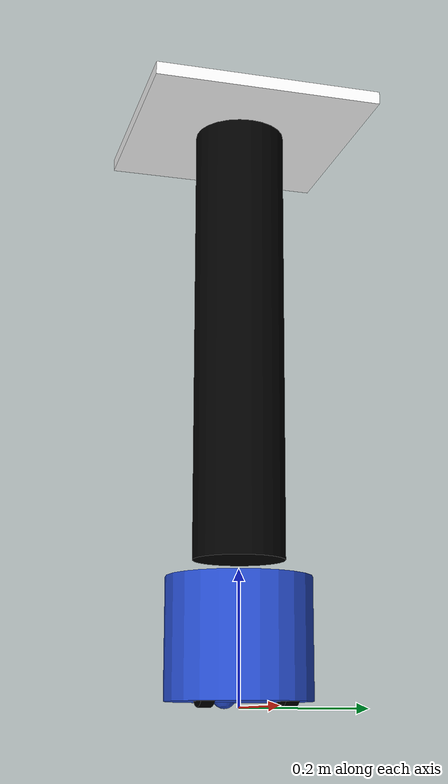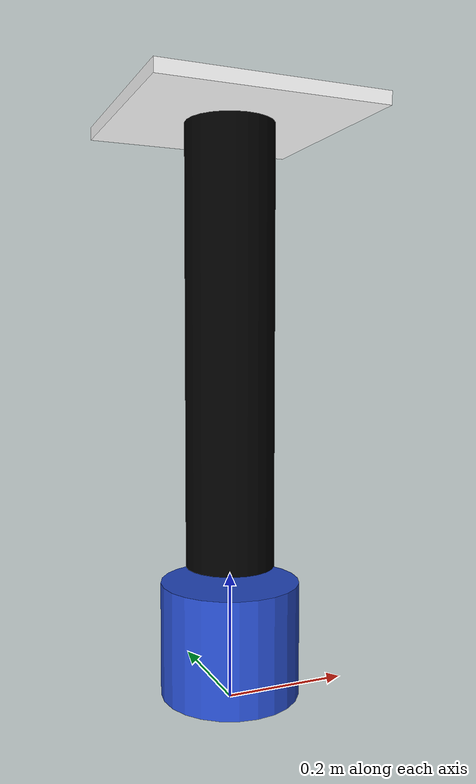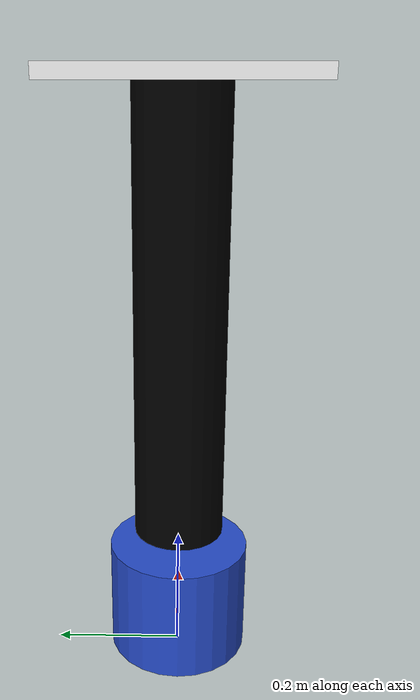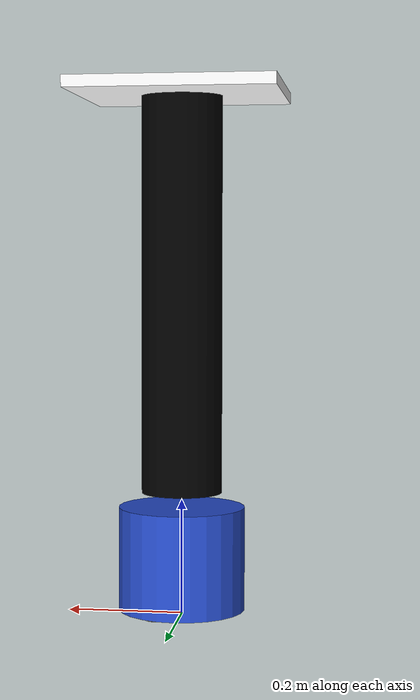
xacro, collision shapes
<?xml version="1.0"?>
<robot xmlns:xacro="http://www.ros.org/wiki/xacro" name="waiter_robot">

  <xacro:include filename="fra2mo_base_macro.xacro"/>
  <xacro:include filename="lidar_gazebo_macro.xacro"/>

  <xacro:property name="LIDAR" value="True"/>

  <xacro:fra2mo_base/>

  <xacro:if value="${LIDAR}">
    <xacro:lidar_gazebo_sensor parent="lidar_link"/>
  </xacro:if>

  <joint name="base_to_support_joint" type="fixed">
    <parent link="base_link"/>
    <child link="support_link"/>
    <origin xyz="0 0 0.2" rpy="0 0 0"/>
  </joint>

  <link name="support_link">
    <visual>
      <origin xyz="0 0 0.30" rpy="0 0 0"/>
      <geometry>
        <cylinder radius="0.03" length="0.69"/>
      </geometry>
      <material name="Black">
        <color rgba="0 0 0 1"/>
      </material>
    </visual>
    <collision>
      <origin xyz="0 0 0.30" rpy="0 0 0"/>
      <geometry>
        <cylinder radius="0.07" length="0.69"/>
      </geometry>

      <surface>
         <friction>
            <ode>
              <mu>100000.0</mu>
              <mu2>100000.0</mu2>
            </ode>
         </friction>
      </surface>
    </collision>
    <inertial>
      <mass value="0.1"/>
      <origin xyz="0 0 0.45" rpy="0 0 0"/>
      <inertia ixx="0.01" ixy="0" ixz="0" iyy="0.01" iyz="0" izz="0.01"/>
    </inertial>
  </link>

  <joint name="support_tray_joint" type="fixed">
    <parent link="support_link"/>
    <child link="tray_link"/>
    <origin xyz="0 0 0.65" rpy="0 0 0"/>
  </joint>

  <link name="tray_link">
    <visual>
      <geometry>
        <box size="0.35 0.35 0.005"/>
      </geometry>
      <material name="White">
        <color rgba="1 1 1 1"/>
      </material>
    </visual>
    <collision>
      <geometry>
        <box size="0.35 0.35 0.020"/>
      </geometry>
      <surface>
         <friction>
            <ode>
              <mu>1000.0</mu>
              <mu2>1000.0</mu2>
            </ode>
         </friction>
      </surface>
    </collision>
    <inertial>
      <mass value="0.1"/>
      <inertia ixx="0.0001" ixy="0" ixz="0" iyy="0.0001" iyz="0" izz="0.0001"/>
    </inertial>
  </link>

  <gazebo reference="tray_link">
    <material>Gazebo/White</material>
  </gazebo>

  <link name="aruco_link">
    <visual>
      <geometry>
        <box size="0.20 0.20 0.001"/>
      </geometry>
      <surface>
         <friction>
            <ode>
              <mu>1000000.0</mu>
              <mu2>100000.0</mu2>
            </ode>
         </friction>
      </surface>
      <material name="Black">
        <color rgba="1 1 1 1"/>
      </material>
    </visual>
    <collision>
      <geometry>
         <box size="0.20 0.20 0.001"/>
      </geometry>
    </collision>
    <inertial>
      <mass value="0.01"/>
      <inertia ixx="0.00001" ixy="0" ixz="0" iyy="0.00001" iyz="0" izz="0.00001"/>
    </inertial>
  </link>

  <joint name="tray_to_aruco" type="fixed">
    <parent link="tray_link"/>
    <child link="aruco_link"/>
    <origin xyz="0 0 0.0035" rpy="0 0 0"/>
  </joint>

  <gazebo reference="aruco_link">
    <visual>
      <material>
        <diffuse>1 1 1 1</diffuse>
        <specular>0 0 0 1</specular>
        <pbr>
          <metal>
            <albedo_map>file://$(find pizzeria)/textures/aruco_0.png</albedo_map>
          </metal>
        </pbr>
      </material>
    </visual>
  </gazebo>

</robot>

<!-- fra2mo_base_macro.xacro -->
<robot xmlns:xacro="http://www.ros.org/wiki/xacro">
  <xacro:include filename="$(find ros2_fra2mo)/urdf/utility_macro.xacro" />

  <xacro:macro name="fra2mo_base" > <xacro:property name="base_height" value="0.180" />
    <xacro:property name="base_radius" value="0.11" />
    <xacro:property name="base_mass" value="5" />
    <xacro:property name="wheel_mass" value="2.5" />
    <xacro:property name="wheel_radius" value="0.035" />
    <xacro:property name="wheel_axle" value="0.13" />

    <link name="base_footprint">
    </link>

    <link name="base_link">
      <inertial>
        <origin xyz="0 0 0" />
        <mass value="${base_mass}" />
        <xacro:cylinder_inertia m="${base_mass}" r="${base_radius}" h="${base_height}" />
      </inertial>
      <visual>
        <geometry>
          <mesh filename="file://$(find ros2_fra2mo)/meshes/rl_fra2mo_body.stl" scale="0.001 0.001 0.001" />
        </geometry>
        <material name="Blue" />
        <origin xyz="0 0 0" rpy="0 0 0" />
      </visual>
      <collision>
        <geometry>
          <cylinder length="${base_height}" radius="${base_radius}" />
        </geometry>
        <origin xyz="0 0.0 ${(base_height/2.0)-0.05}" rpy="0 0 0" />
      </collision>
      <collision>
        <geometry>
          <sphere radius="0.019" />
        </geometry>
        <origin xyz="-0.0825 0.0 -0.04" rpy="0 0 0" />
      </collision>
    </link>

    <link name="left_wheel_link">
      <visual>
        <geometry>
          <mesh filename="file://$(find ros2_fra2mo)/meshes/rl_fra2mo_wheel.stl" scale="0.001 0.001 0.001" />
        </geometry>
        <material name="Black" />
        <origin xyz="0 0 0" rpy="0 0 0" />
      </visual>

      <collision>
        <geometry>
          <cylinder length="0.02" radius="${wheel_radius}" />
        </geometry>
        <origin xyz="0 0 0" rpy="${M_PI/2} 0 0" />
      </collision>

      <inertial>
        <origin xyz="0 0 0" />
        <mass value="${wheel_mass}" />
        <inertia ixx="0.001" ixy="0.0" ixz="0.0" iyy="0.001" iyz="0.0" izz="0.001" />
      </inertial>
    </link>

    <link name="right_wheel_link">
      <visual>
        <geometry>
          <mesh filename="file://$(find ros2_fra2mo)/meshes/rl_fra2mo_wheel.stl" scale="0.001 0.001 0.001" />
        </geometry>
        <material name="Black"/>
        <origin xyz="0 0 0" rpy="0 0 0" />
      </visual>

      <collision>
        <geometry>
           <cylinder length="0.02" radius="${wheel_radius}" />
        </geometry>
        <origin xyz="0 0 0" rpy="${M_PI/2} 0 0" />
      </collision>

      <inertial>
        <origin xyz="0 0 0" />
        <mass value="${wheel_mass}" />
        <inertia ixx="0.001" ixy="0.0" ixz="0.0" iyy="0.001" iyz="0.0" izz="0.001" />
      </inertial>
    </link>

    <link name="d435_link">
    </link>
    <link name="lidar_link" />

    <joint name="base_footprint_joint" type="fixed">
      <parent link="base_footprint" />
      <child link="base_link" />
      <origin xyz="0.0 0.0 0.059" rpy="0 0 0" />
    </joint>
    <joint name="left_wheel_joint" type="continuous">
      <parent link="base_link" />
      <child link="left_wheel_link" />
      <origin xyz="0.04025 0.062 -0.024" rpy="0 0 0" />
      <axis xyz="0 1 0" />
      <limit effort="100" velocity="100" />
      <dynamics damping="0.5" friction="0.01" />
    </joint>
    <joint name="right_wheel_joint" type="continuous">
      <parent link="base_link" />
      <child link="right_wheel_link" />
      <origin xyz="0.04025 -0.062 -0.024" rpy="0 0 ${-M_PI}" />
      <axis xyz="0 -1 0" />
      <limit effort="100" velocity="100" />
      <dynamics damping="0.5" friction="0.01" />
    </joint>
    <joint name="d435_joint" type="fixed">
      <parent link="base_link" />
      <child link="d435_link" />
      <origin xyz="0.090925 0.0 0.06670" rpy="0 0 0" />
    </joint>
    <joint name="lidar_joint" type="fixed">
      <parent link="base_link" />
      <child link="lidar_link" />
      <origin xyz="0.0 0.0 0.125" rpy="0 0 0" />
    </joint>

    <transmission name="left_wheel_joint_trans">
      <type>transmission_interface/SimpleTransmission</type>
      <joint name="left_wheel_joint" />
      <actuator name="left_wheel_joint_motor">
        <mechanicalReduction>1</mechanicalReduction>
        <hardwareInterface>EffortJointInterface</hardwareInterface>
      </actuator>
    </transmission>
    <transmission name="right_wheel_joint_trans">
      <type>transmission_interface/SimpleTransmission</type>
      <joint name="right_wheel_joint" />
      <actuator name="right_wheel_joint_motor">
        <mechanicalReduction>1</mechanicalReduction>
        <hardwareInterface>EffortJointInterface</hardwareInterface>
      </actuator>
    </transmission>

    <gazebo>
      <plugin name="ignition::gazebo::systems::DiffDrive" filename="libignition-gazebo-diff-drive-system.so">
        <left_joint>left_wheel_joint</left_joint>
        <right_joint>right_wheel_joint</right_joint>
        <wheel_separation>${wheel_axle}</wheel_separation>
        <wheel_radius>${wheel_radius}</wheel_radius>
        <odom_publish_frequency>50</odom_publish_frequency>
        <topic>cmd_vel</topic>
      </plugin>
    </gazebo>

  </xacro:macro>
</robot>

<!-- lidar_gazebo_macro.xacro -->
<robot xmlns:xacro="http://www.ros.org/wiki/xacro" name="lidar_gazebo_macro" >

  <xacro:macro name="lidar_gazebo_sensor" params="parent">

    <link name="laser_frame">
      <inertial>
        <origin xyz="0 0 0" />
        <mass value="0.1" />
        <xacro:cylinder_inertia m="0.1" r="0.037" h="0.04" />
      </inertial>
      <visual>
        <origin rpy="0 0 ${-M_PI_2}" xyz="0.0 0.0 -0.031" />
        <geometry>
          <mesh filename="file://$(find ros2_fra2mo)/meshes/lidar.stl" scale="0.001 0.001 0.001" />
        </geometry>
        <material name="White" />
      </visual>
      <collision>
        <origin xyz="0.0 0.0 -0.031" rpy="0 0 0" />
        <geometry>
          <cylinder length="0.04" radius="0.037" />
        </geometry>
      </collision>
    </link>

    <joint name="laser_joint" type="fixed">
      <parent link="${parent}" />
      <child link="laser_frame" />
      <origin rpy="0 0 0" xyz="0.0 0.0 0.031" />
    </joint>

    <gazebo reference="laser_frame">
      <sensor name="laser_frame" type="gpu_lidar">
          <!--TO LOOK-->
          <topic>lidar</topic>
          <update_rate>10</update_rate>
          <ray>
              <scan>
                  <horizontal>
                      <samples>500</samples>
                      <resolution>1</resolution>
                      <min_angle>-3.14</min_angle>
                      <max_angle>3.14</max_angle>
                  </horizontal>
              </scan>
              <range>
                  <min>0.1</min>
                  <max>10.0</max>
                  <resolution>0.01</resolution>
              </range>
            </ray>
            <always_on>false</always_on>
            <visualize>false</visualize>
            <frame_id>laser_frame</frame_id> <!--TO LOOK-->
            <ignition_frame_id>laser_frame</ignition_frame_id>
        </sensor>
    </gazebo>

  <!--TO LOOK-->

  </xacro:macro>
</robot>
